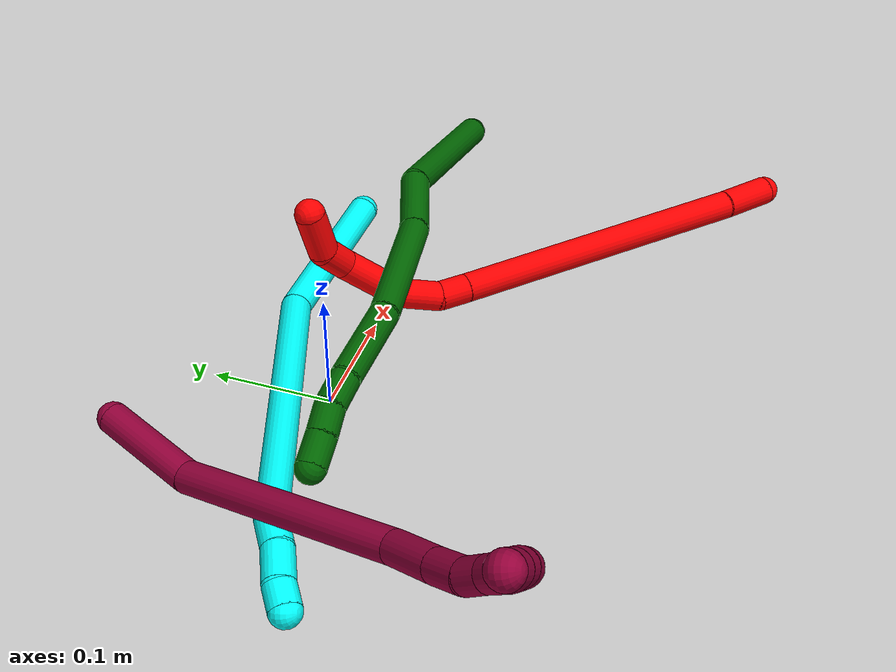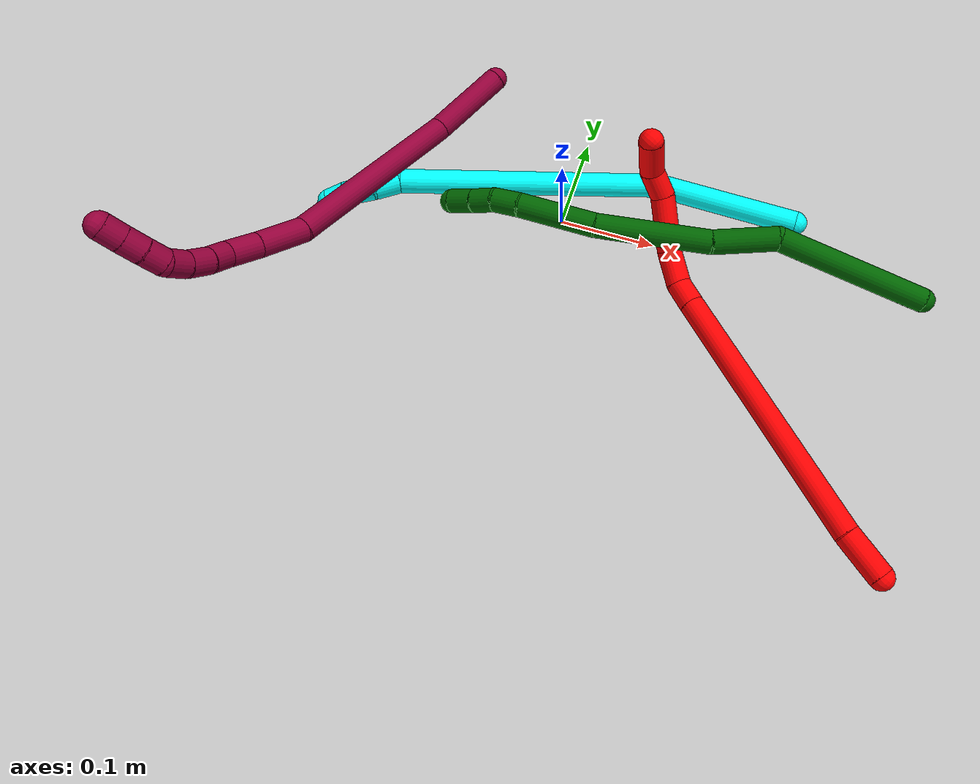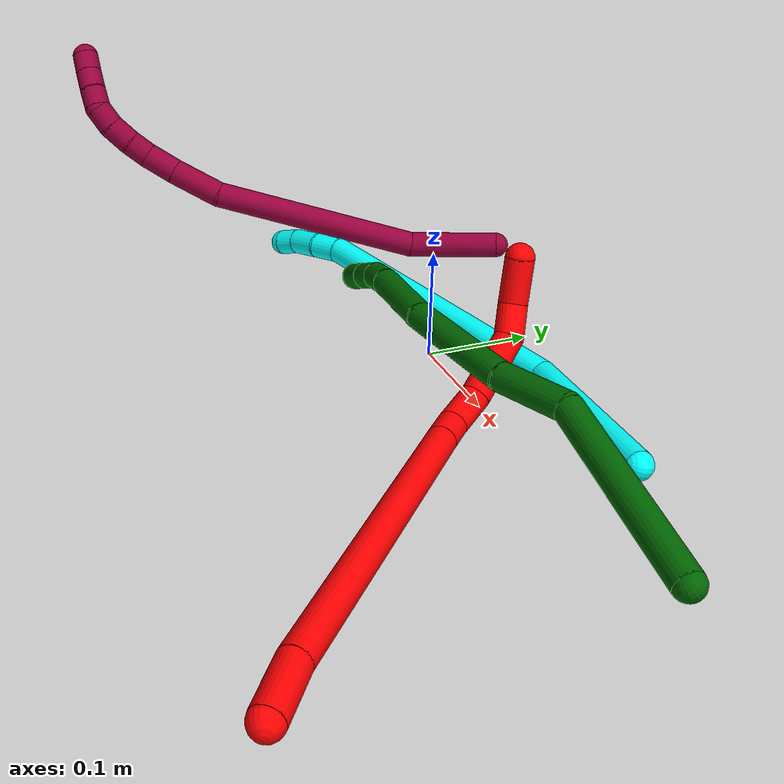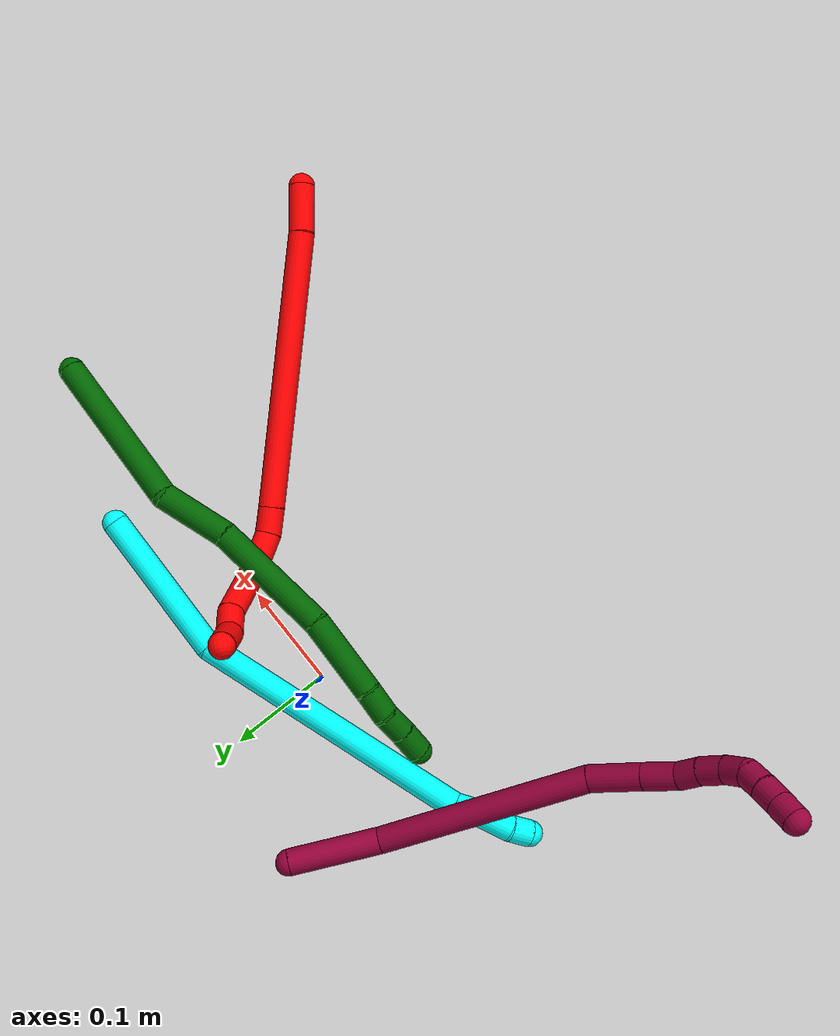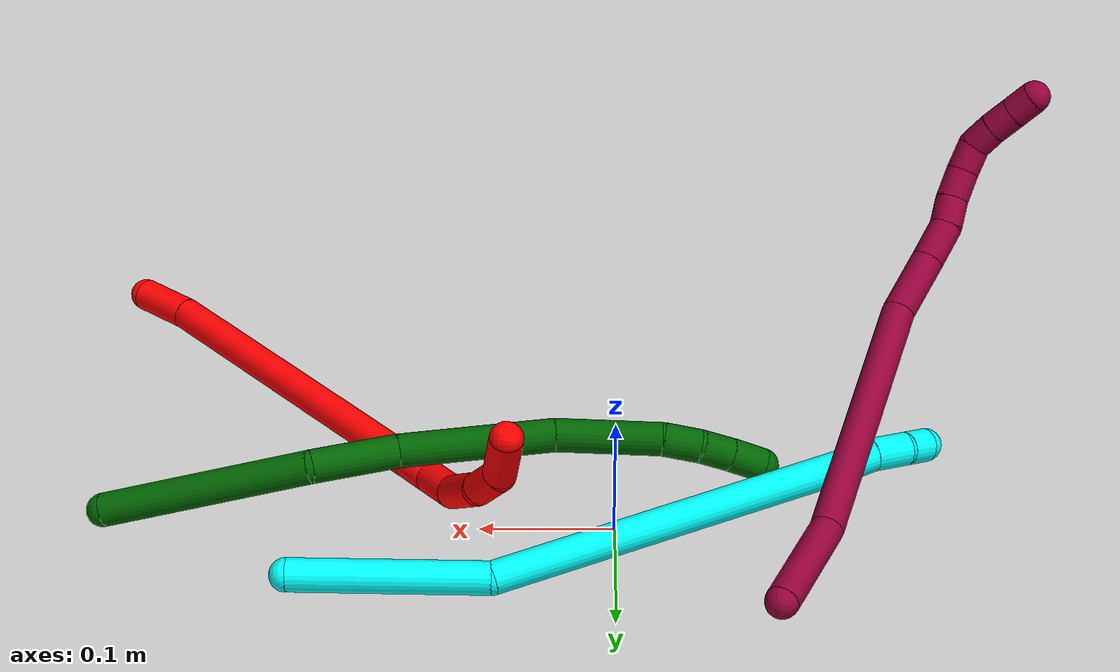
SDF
<sdf version="1.7">
 <world name="default">
  <model name="photoneo_s_sensor">
   <static>1</static>
   <pose>0 0 2 1.57079 1.57079 3.14159</pose>
   <link name="link">
    <inertial><mass>0.1</mass></inertial>
    <sensor name="sensor" type="depth">
     <update_rate>30</update_rate>
     <camera>
      <horizontal_fov>1.22</horizontal_fov>
      <image><width>1920</width><height>1200</height><format>B8G8R8</format></image>
      <clip><near>0.1</near><far>4</far></clip>
      <depth_camera><output>points</output></depth_camera>
     </camera>
     <plugin name="camera_plugin" filename="libgazebo_ros_depth_camera.so">
      <baseline>0.2</baseline>
      <alwaysOn>1</alwaysOn>
      <updateRate>0.0</updateRate>
      <cameraName>camera_ir</cameraName>
      <imageTopicName>/camera/color/image_raw</imageTopicName>
      <cameraInfoTopicName>/camera/color/camera_info</cameraInfoTopicName>
      <depthImageTopicName>/camera/depth/image_raw</depthImageTopicName>
      <depthImageCameraInfoTopicName>/camera/depth/camera_info</depthImageCameraInfoTopicName>
      <pointCloudTopicName>/camera/depth/points</pointCloudTopicName>
      <frameName>fr_optical</frameName>
      <pointCloudCutoff>0.1</pointCloudCutoff>
      <pointCloudCutoffMax>2.0</pointCloudCutoffMax>
      <distortionK1>0</distortionK1>
      <distortionK2>0</distortionK2>
      <distortionK3>0</distortionK3>
      <distortionT1>0</distortionT1>
      <distortionT2>0</distortionT2>
      <CxPrime>0</CxPrime>
      <Cx>0</Cx>
      <Cy>0</Cy>
      <focalLength>0</focalLength>
      <hackBaseline>0</hackBaseline>
     </plugin>
    </sensor>
   </link>
  </model>
  <model name="bin">
   <static>1</static>
   <link name="bottom">
    <collision name="collision-bottom">
     <pose>0 0 -0.01 0 -0 0</pose>
     <geometry><box><size>0.8 0.6 0.02</size></box></geometry>
     <surface>
      <friction><ode><mu>100</mu><mu2>100</mu2></ode></friction>
      <contact><collide_bitmask>65535</collide_bitmask></contact>
     </surface>
    </collision>
   </link>
   <link name="west_wall">
    <collision name="collision-west_wall">
     <pose>-0.41 0 0.1 0 -0 0</pose>
     <geometry><box><size>0.02 0.6 0.2</size></box></geometry>
     <surface>
      <friction><ode><mu>100</mu><mu2>100</mu2></ode></friction>
      <contact><collide_bitmask>65535</collide_bitmask></contact>
     </surface>
    </collision>
   </link>
   <link name="east_wall">
    <collision name="collision-east_wall">
     <pose>0.41 0 0.1 0 -0 0</pose>
     <geometry><box><size>0.02 0.6 0.2</size></box></geometry>
     <surface>
      <friction><ode><mu>100</mu><mu2>100</mu2></ode></friction>
      <contact><collide_bitmask>65535</collide_bitmask></contact>
     </surface>
    </collision>
   </link>
   <link name="south_wall">
    <collision name="collision-south_wall">
     <pose>0 -0.31 0.1 0 -0 0</pose>
     <geometry><box><size>0.8 0.02 0.2</size></box></geometry>
     <surface>
      <friction><ode><mu>100</mu><mu2>100</mu2></ode></friction>
      <contact><collide_bitmask>65535</collide_bitmask></contact>
     </surface>
    </collision>
   </link>
   <link name="north_wall">
    <collision name="collision-north_wall">
     <pose>0 0.31 0.1 0 -0 0</pose>
     <geometry><box><size>0.8 0.02 0.2</size></box></geometry>
     <surface>
      <friction><ode><mu>100</mu><mu2>100</mu2></ode></friction>
      <contact><collide_bitmask>65535</collide_bitmask></contact>
     </surface>
    </collision>
   </link>
  </model>
  <model name="2">
   <static>0</static>
   <link name="2">
    <collision name="collision-cylinder-e_1_1_4">
     <pose>0.000719 0.005995 -0.02243 -2.88041 0.030954 -0.234617</pose>
     <geometry><cylinder><radius>0.0125</radius><length>0.046457</length></cylinder></geometry>
     <surface>
      <friction><ode><mu>1.16</mu><mu2>1.16</mu2><slip1>0</slip1><slip2>0</slip2></ode></friction>
      <contact><ode><kp>1e+06</kp><kd>1</kd><max_vel>0</max_vel><min_depth>0.001</min_depth></ode></contact>
     </surface>
    </collision>
    <visual name="visual-cylinder-e_1_1_4">
     <pose>0.000719 0.005995 -0.02243 -2.88041 0.030954 -0.234617</pose>
     <geometry><cylinder><radius>0.0125</radius><length>0.046457</length></cylinder></geometry>
     <material><ambient>1 0 0 1</ambient></material>
    </visual>
    <collision name="collision-cylinder-e_2_4_5">
     <pose>0.00504 0.060829 -0.16803 -2.7641 0.027179 -0.142051</pose>
     <geometry><cylinder><radius>0.0125</radius><length>0.265097</length></cylinder></geometry>
     <surface>
      <friction><ode><mu>1.16</mu><mu2>1.16</mu2><slip1>0</slip1><slip2>0</slip2></ode></friction>
      <contact><ode><kp>1e+06</kp><kd>1</kd><max_vel>0</max_vel><min_depth>0.001</min_depth></ode></contact>
     </surface>
    </collision>
    <visual name="visual-cylinder-e_2_4_5">
     <pose>0.00504 0.060829 -0.16803 -2.7641 0.027179 -0.142051</pose>
     <geometry><cylinder><radius>0.0125</radius><length>0.265097</length></cylinder></geometry>
     <material><ambient>1 0 0 1</ambient></material>
    </visual>
    <collision name="collision-cylinder-e_3_5_6">
     <pose>0.008784 0.114562 -0.303078 -2.7507 0.011045 -0.055777</pose>
     <geometry><cylinder><radius>0.0125</radius><length>0.025696</length></cylinder></geometry>
     <surface>
      <friction><ode><mu>1.16</mu><mu2>1.16</mu2><slip1>0</slip1><slip2>0</slip2></ode></friction>
      <contact><ode><kp>1e+06</kp><kd>1</kd><max_vel>0</max_vel><min_depth>0.001</min_depth></ode></contact>
     </surface>
    </collision>
    <visual name="visual-cylinder-e_3_5_6">
     <pose>0.008784 0.114562 -0.303078 -2.7507 0.011045 -0.055777</pose>
     <geometry><cylinder><radius>0.0125</radius><length>0.025696</length></cylinder></geometry>
     <material><ambient>1 0 0 1</ambient></material>
    </visual>
    <collision name="collision-cylinder-e_4_6_7">
     <pose>0.003101 0.127004 -0.330065 -2.67837 -0.332118 1.23568</pose>
     <geometry><cylinder><radius>0.0125</radius><length>0.035731</length></cylinder></geometry>
     <surface>
      <friction><ode><mu>1.16</mu><mu2>1.16</mu2><slip1>0</slip1><slip2>0</slip2></ode></friction>
      <contact><ode><kp>1e+06</kp><kd>1</kd><max_vel>0</max_vel><min_depth>0.001</min_depth></ode></contact>
     </surface>
    </collision>
    <visual name="visual-cylinder-e_4_6_7">
     <pose>0.003101 0.127004 -0.330065 -2.67837 -0.332118 1.23568</pose>
     <geometry><cylinder><radius>0.0125</radius><length>0.035731</length></cylinder></geometry>
     <material><ambient>1 0 0 1</ambient></material>
    </visual>
    <collision name="collision-cylinder-e_5_7_8">
     <pose>-0.021669 0.140939 -0.365962 -2.8434 -0.716639 2.37866</pose>
     <geometry><cylinder><radius>0.0125</radius><length>0.057684</length></cylinder></geometry>
     <surface>
      <friction><ode><mu>1.16</mu><mu2>1.16</mu2><slip1>0</slip1><slip2>0</slip2></ode></friction>
      <contact><ode><kp>1e+06</kp><kd>1</kd><max_vel>0</max_vel><min_depth>0.001</min_depth></ode></contact>
     </surface>
    </collision>
    <visual name="visual-cylinder-e_5_7_8">
     <pose>-0.021669 0.140939 -0.365962 -2.8434 -0.716639 2.37866</pose>
     <geometry><cylinder><radius>0.0125</radius><length>0.057684</length></cylinder></geometry>
     <material><ambient>1 0 0 1</ambient></material>
    </visual>
    <collision name="collision-cylinder-e_6_8_9">
     <pose>-0.049547 0.145069 -0.398004 2.94347 -0.661326 -2.57794</pose>
     <geometry><cylinder><radius>0.0125</radius><length>0.029089</length></cylinder></geometry>
     <surface>
      <friction><ode><mu>1.16</mu><mu2>1.16</mu2><slip1>0</slip1><slip2>0</slip2></ode></friction>
      <contact><ode><kp>1e+06</kp><kd>1</kd><max_vel>0</max_vel><min_depth>0.001</min_depth></ode></contact>
     </surface>
    </collision>
    <visual name="visual-cylinder-e_6_8_9">
     <pose>-0.049547 0.145069 -0.398004 2.94347 -0.661326 -2.57794</pose>
     <geometry><cylinder><radius>0.0125</radius><length>0.029089</length></cylinder></geometry>
     <material><ambient>1 0 0 1</ambient></material>
    </visual>
    <collision name="collision-cylinder-e_7_9_2">
     <pose>-0.076272 0.137171 -0.41678 2.49837 -1.08468 -2.13148</pose>
     <geometry><cylinder><radius>0.0125</radius><length>0.040247</length></cylinder></geometry>
     <surface>
      <friction><ode><mu>1.16</mu><mu2>1.16</mu2><slip1>0</slip1><slip2>0</slip2></ode></friction>
      <contact><ode><kp>1e+06</kp><kd>1</kd><max_vel>0</max_vel><min_depth>0.001</min_depth></ode></contact>
     </surface>
    </collision>
    <visual name="visual-cylinder-e_7_9_2">
     <pose>-0.076272 0.137171 -0.41678 2.49837 -1.08468 -2.13148</pose>
     <geometry><cylinder><radius>0.0125</radius><length>0.040247</length></cylinder></geometry>
     <material><ambient>1 0 0 1</ambient></material>
    </visual>
    <collision name="collision-sphere-2">
     <pose>-0.094064 0.131532 -0.424303 0 -0 0</pose>
     <geometry><sphere><radius>0.0125</radius></sphere></geometry>
     <surface>
      <friction><ode><mu>1.16</mu><mu2>1.16</mu2><slip1>0</slip1><slip2>0</slip2></ode></friction>
      <contact><ode><kp>1e+06</kp><kd>1</kd><max_vel>0</max_vel><min_depth>0.001</min_depth></ode></contact>
     </surface>
    </collision>
    <visual name="visual-sphere-2">
     <pose>-0.094064 0.131532 -0.424303 0 -0 0</pose>
     <geometry><sphere><radius>0.0125</radius></sphere></geometry>
     <material><ambient>1 0 0 1</ambient></material>
    </visual>
    <collision name="collision-sphere-9">
     <pose>-0.05848 0.14281 -0.409257 0 -0 0</pose>
     <geometry><sphere><radius>0.0125</radius></sphere></geometry>
     <surface>
      <friction><ode><mu>1.16</mu><mu2>1.16</mu2><slip1>0</slip1><slip2>0</slip2></ode></friction>
      <contact><ode><kp>1e+06</kp><kd>1</kd><max_vel>0</max_vel><min_depth>0.001</min_depth></ode></contact>
     </surface>
    </collision>
    <visual name="visual-sphere-9">
     <pose>-0.05848 0.14281 -0.409257 0 -0 0</pose>
     <geometry><sphere><radius>0.0125</radius></sphere></geometry>
     <material><ambient>1 0 0 1</ambient></material>
    </visual>
    <collision name="collision-sphere-4">
     <pose>0.001438 0.011991 -0.04486 0 -0 0</pose>
     <geometry><sphere><radius>0.0125</radius></sphere></geometry>
     <surface>
      <friction><ode><mu>1.16</mu><mu2>1.16</mu2><slip1>0</slip1><slip2>0</slip2></ode></friction>
      <contact><ode><kp>1e+06</kp><kd>1</kd><max_vel>0</max_vel><min_depth>0.001</min_depth></ode></contact>
     </surface>
    </collision>
    <visual name="visual-sphere-4">
     <pose>0.001438 0.011991 -0.04486 0 -0 0</pose>
     <geometry><sphere><radius>0.0125</radius></sphere></geometry>
     <material><ambient>1 0 0 1</ambient></material>
    </visual>
    <collision name="collision-sphere-1">
     <geometry><sphere><radius>0.0125</radius></sphere></geometry>
     <surface>
      <friction><ode><mu>1.16</mu><mu2>1.16</mu2><slip1>0</slip1><slip2>0</slip2></ode></friction>
      <contact><ode><kp>1e+06</kp><kd>1</kd><max_vel>0</max_vel><min_depth>0.001</min_depth></ode></contact>
     </surface>
    </collision>
    <visual name="visual-sphere-1">
     <geometry><sphere><radius>0.0125</radius></sphere></geometry>
     <material><ambient>1 0 0 1</ambient></material>
    </visual>
    <collision name="collision-sphere-8">
     <pose>-0.040614 0.147329 -0.38675 0 -0 0</pose>
     <geometry><sphere><radius>0.0125</radius></sphere></geometry>
     <surface>
      <friction><ode><mu>1.16</mu><mu2>1.16</mu2><slip1>0</slip1><slip2>0</slip2></ode></friction>
      <contact><ode><kp>1e+06</kp><kd>1</kd><max_vel>0</max_vel><min_depth>0.001</min_depth></ode></contact>
     </surface>
    </collision>
    <visual name="visual-sphere-8">
     <pose>-0.040614 0.147329 -0.38675 0 -0 0</pose>
     <geometry><sphere><radius>0.0125</radius></sphere></geometry>
     <material><ambient>1 0 0 1</ambient></material>
    </visual>
    <collision name="collision-sphere-5">
     <pose>0.008642 0.109667 -0.2912 0 -0 0</pose>
     <geometry><sphere><radius>0.0125</radius></sphere></geometry>
     <surface>
      <friction><ode><mu>1.16</mu><mu2>1.16</mu2><slip1>0</slip1><slip2>0</slip2></ode></friction>
      <contact><ode><kp>1e+06</kp><kd>1</kd><max_vel>0</max_vel><min_depth>0.001</min_depth></ode></contact>
     </surface>
    </collision>
    <visual name="visual-sphere-5">
     <pose>0.008642 0.109667 -0.2912 0 -0 0</pose>
     <geometry><sphere><radius>0.0125</radius></sphere></geometry>
     <material><ambient>1 0 0 1</ambient></material>
    </visual>
    <collision name="collision-sphere-6">
     <pose>0.008926 0.119457 -0.314956 0 -0 0</pose>
     <geometry><sphere><radius>0.0125</radius></sphere></geometry>
     <surface>
      <friction><ode><mu>1.16</mu><mu2>1.16</mu2><slip1>0</slip1><slip2>0</slip2></ode></friction>
      <contact><ode><kp>1e+06</kp><kd>1</kd><max_vel>0</max_vel><min_depth>0.001</min_depth></ode></contact>
     </surface>
    </collision>
    <visual name="visual-sphere-6">
     <pose>0.008926 0.119457 -0.314956 0 -0 0</pose>
     <geometry><sphere><radius>0.0125</radius></sphere></geometry>
     <material><ambient>1 0 0 1</ambient></material>
    </visual>
    <collision name="collision-sphere-7">
     <pose>-0.002724 0.13455 -0.345175 0 -0 0</pose>
     <geometry><sphere><radius>0.0125</radius></sphere></geometry>
     <surface>
      <friction><ode><mu>1.16</mu><mu2>1.16</mu2><slip1>0</slip1><slip2>0</slip2></ode></friction>
      <contact><ode><kp>1e+06</kp><kd>1</kd><max_vel>0</max_vel><min_depth>0.001</min_depth></ode></contact>
     </surface>
    </collision>
    <visual name="visual-sphere-7">
     <pose>-0.002724 0.13455 -0.345175 0 -0 0</pose>
     <geometry><sphere><radius>0.0125</radius></sphere></geometry>
     <material><ambient>1 0 0 1</ambient></material>
    </visual>
    <inertial>
     <pose>-0.00811 0.083513 -0.229259 0 -0 0</pose>
     <mass>0.5</mass>
     <inertia>
      <ixx>0.001326</ixx>
      <ixy>0</ixy>
      <ixz>0</ixz>
      <iyy>-0.001628</iyy>
      <iyz>0</iyz>
      <izz>-0.000637</izz>
     </inertia>
    </inertial>
   </link>
   <pose>0.382518 -0.275626 0.012317 -1.99977 1.12971 -2.40173</pose>
  </model>
  <model name="3">
   <static>0</static>
   <link name="3">
    <collision name="collision-cylinder-e_1_1_4">
     <pose>-0.069904 0.02469 -0.003287 -1.70315 -1.22851 1.35604</pose>
     <geometry><cylinder><radius>0.0125</radius><length>0.148418</length></cylinder></geometry>
     <surface>
      <friction><ode><mu>1.16</mu><mu2>1.16</mu2><slip1>0</slip1><slip2>0</slip2></ode></friction>
      <contact><ode><kp>1e+06</kp><kd>1</kd><max_vel>0</max_vel><min_depth>0.001</min_depth></ode></contact>
     </surface>
    </collision>
    <visual name="visual-cylinder-e_1_1_4">
     <pose>-0.069904 0.02469 -0.003287 -1.70315 -1.22851 1.35604</pose>
     <geometry><cylinder><radius>0.0125</radius><length>0.148418</length></cylinder></geometry>
     <material><ambient>0.003922 1 0.996078 1</ambient></material>
    </visual>
    <collision name="collision-cylinder-e_2_4_5">
     <pose>-0.257574 0.091705 -0.062852 -2.49677 -1.03188 2.07702</pose>
     <geometry><cylinder><radius>0.0125</radius><length>0.274426</length></cylinder></geometry>
     <surface>
      <friction><ode><mu>1.16</mu><mu2>1.16</mu2><slip1>0</slip1><slip2>0</slip2></ode></friction>
      <contact><ode><kp>1e+06</kp><kd>1</kd><max_vel>0</max_vel><min_depth>0.001</min_depth></ode></contact>
     </surface>
    </collision>
    <visual name="visual-cylinder-e_2_4_5">
     <pose>-0.257574 0.091705 -0.062852 -2.49677 -1.03188 2.07702</pose>
     <geometry><cylinder><radius>0.0125</radius><length>0.274426</length></cylinder></geometry>
     <material><ambient>0.003922 1 0.996078 1</ambient></material>
    </visual>
    <collision name="collision-cylinder-e_3_5_6">
     <pose>-0.384467 0.140398 -0.12665 -2.43889 -0.747206 1.63787</pose>
     <geometry><cylinder><radius>0.0125</radius><length>0.026863</length></cylinder></geometry>
     <surface>
      <friction><ode><mu>1.16</mu><mu2>1.16</mu2><slip1>0</slip1><slip2>0</slip2></ode></friction>
      <contact><ode><kp>1e+06</kp><kd>1</kd><max_vel>0</max_vel><min_depth>0.001</min_depth></ode></contact>
     </surface>
    </collision>
    <visual name="visual-cylinder-e_3_5_6">
     <pose>-0.384467 0.140398 -0.12665 -2.43889 -0.747206 1.63787</pose>
     <geometry><cylinder><radius>0.0125</radius><length>0.026863</length></cylinder></geometry>
     <material><ambient>0.003922 1 0.996078 1</ambient></material>
    </visual>
    <collision name="collision-cylinder-e_4_6_7">
     <pose>-0.404713 0.154791 -0.140382 -2.22959 -0.830937 1.46499</pose>
     <geometry><cylinder><radius>0.0125</radius><length>0.030108</length></cylinder></geometry>
     <surface>
      <friction><ode><mu>1.16</mu><mu2>1.16</mu2><slip1>0</slip1><slip2>0</slip2></ode></friction>
      <contact><ode><kp>1e+06</kp><kd>1</kd><max_vel>0</max_vel><min_depth>0.001</min_depth></ode></contact>
     </surface>
    </collision>
    <visual name="visual-cylinder-e_4_6_7">
     <pose>-0.404713 0.154791 -0.140382 -2.22959 -0.830937 1.46499</pose>
     <geometry><cylinder><radius>0.0125</radius><length>0.030108</length></cylinder></geometry>
     <material><ambient>0.003922 1 0.996078 1</ambient></material>
    </visual>
    <collision name="collision-cylinder-e_5_7_2">
     <pose>-0.421576 0.169456 -0.151571 -2.21401 -0.605561 1.11655</pose>
     <geometry><cylinder><radius>0.0125</radius><length>0.020186</length></cylinder></geometry>
     <surface>
      <friction><ode><mu>1.16</mu><mu2>1.16</mu2><slip1>0</slip1><slip2>0</slip2></ode></friction>
      <contact><ode><kp>1e+06</kp><kd>1</kd><max_vel>0</max_vel><min_depth>0.001</min_depth></ode></contact>
     </surface>
    </collision>
    <visual name="visual-cylinder-e_5_7_2">
     <pose>-0.421576 0.169456 -0.151571 -2.21401 -0.605561 1.11655</pose>
     <geometry><cylinder><radius>0.0125</radius><length>0.020186</length></cylinder></geometry>
     <material><ambient>0.003922 1 0.996078 1</ambient></material>
    </visual>
    <collision name="collision-sphere-2">
     <pose>-0.427321 0.176096 -0.156548 0 -0 0</pose>
     <geometry><sphere><radius>0.0125</radius></sphere></geometry>
     <surface>
      <friction><ode><mu>1.16</mu><mu2>1.16</mu2><slip1>0</slip1><slip2>0</slip2></ode></friction>
      <contact><ode><kp>1e+06</kp><kd>1</kd><max_vel>0</max_vel><min_depth>0.001</min_depth></ode></contact>
     </surface>
    </collision>
    <visual name="visual-sphere-2">
     <pose>-0.427321 0.176096 -0.156548 0 -0 0</pose>
     <geometry><sphere><radius>0.0125</radius></sphere></geometry>
     <material><ambient>0.003922 1 0.996078 1</ambient></material>
    </visual>
    <collision name="collision-sphere-7">
     <pose>-0.415831 0.162816 -0.146594 0 -0 0</pose>
     <geometry><sphere><radius>0.0125</radius></sphere></geometry>
     <surface>
      <friction><ode><mu>1.16</mu><mu2>1.16</mu2><slip1>0</slip1><slip2>0</slip2></ode></friction>
      <contact><ode><kp>1e+06</kp><kd>1</kd><max_vel>0</max_vel><min_depth>0.001</min_depth></ode></contact>
     </surface>
    </collision>
    <visual name="visual-sphere-7">
     <pose>-0.415831 0.162816 -0.146594 0 -0 0</pose>
     <geometry><sphere><radius>0.0125</radius></sphere></geometry>
     <material><ambient>0.003922 1 0.996078 1</ambient></material>
    </visual>
    <collision name="collision-sphere-6">
     <pose>-0.393595 0.146766 -0.134169 0 -0 0</pose>
     <geometry><sphere><radius>0.0125</radius></sphere></geometry>
     <surface>
      <friction><ode><mu>1.16</mu><mu2>1.16</mu2><slip1>0</slip1><slip2>0</slip2></ode></friction>
      <contact><ode><kp>1e+06</kp><kd>1</kd><max_vel>0</max_vel><min_depth>0.001</min_depth></ode></contact>
     </surface>
    </collision>
    <visual name="visual-sphere-6">
     <pose>-0.393595 0.146766 -0.134169 0 -0 0</pose>
     <geometry><sphere><radius>0.0125</radius></sphere></geometry>
     <material><ambient>0.003922 1 0.996078 1</ambient></material>
    </visual>
    <collision name="collision-sphere-5">
     <pose>-0.375339 0.13403 -0.119131 0 -0 0</pose>
     <geometry><sphere><radius>0.0125</radius></sphere></geometry>
     <surface>
      <friction><ode><mu>1.16</mu><mu2>1.16</mu2><slip1>0</slip1><slip2>0</slip2></ode></friction>
      <contact><ode><kp>1e+06</kp><kd>1</kd><max_vel>0</max_vel><min_depth>0.001</min_depth></ode></contact>
     </surface>
    </collision>
    <visual name="visual-sphere-5">
     <pose>-0.375339 0.13403 -0.119131 0 -0 0</pose>
     <geometry><sphere><radius>0.0125</radius></sphere></geometry>
     <material><ambient>0.003922 1 0.996078 1</ambient></material>
    </visual>
    <collision name="collision-sphere-1">
     <geometry><sphere><radius>0.0125</radius></sphere></geometry>
     <surface>
      <friction><ode><mu>1.16</mu><mu2>1.16</mu2><slip1>0</slip1><slip2>0</slip2></ode></friction>
      <contact><ode><kp>1e+06</kp><kd>1</kd><max_vel>0</max_vel><min_depth>0.001</min_depth></ode></contact>
     </surface>
    </collision>
    <visual name="visual-sphere-1">
     <geometry><sphere><radius>0.0125</radius></sphere></geometry>
     <material><ambient>0.003922 1 0.996078 1</ambient></material>
    </visual>
    <collision name="collision-sphere-4">
     <pose>-0.139809 0.049379 -0.006574 0 -0 0</pose>
     <geometry><sphere><radius>0.0125</radius></sphere></geometry>
     <surface>
      <friction><ode><mu>1.16</mu><mu2>1.16</mu2><slip1>0</slip1><slip2>0</slip2></ode></friction>
      <contact><ode><kp>1e+06</kp><kd>1</kd><max_vel>0</max_vel><min_depth>0.001</min_depth></ode></contact>
     </surface>
    </collision>
    <visual name="visual-sphere-4">
     <pose>-0.139809 0.049379 -0.006574 0 -0 0</pose>
     <geometry><sphere><radius>0.0125</radius></sphere></geometry>
     <material><ambient>0.003922 1 0.996078 1</ambient></material>
    </visual>
    <inertial>
     <pose>-0.224165 0.081366 -0.056849 0 -0 0</pose>
     <mass>0.5</mass>
     <inertia>
      <ixx>0.00043</ixx>
      <ixy>0</ixy>
      <ixz>0</ixz>
      <iyy>0.002591</iyy>
      <iyz>0</iyz>
      <izz>0.001111</izz>
     </inertia>
    </inertial>
   </link>
   <pose>0.23691 0.063755 0.012567 -1.88089 0.310972 -0.163628</pose>
  </model>
  <model name="6">
   <static>0</static>
   <link name="6">
    <collision name="collision-cylinder-e_1_1_4">
     <pose>-0.062626 -0.044173 -0.023289 2.05598 -0.897654 -1.34747</pose>
     <geometry><cylinder><radius>0.0125</radius><length>0.160195</length></cylinder></geometry>
     <surface>
      <friction><ode><mu>1.16</mu><mu2>1.16</mu2><slip1>0</slip1><slip2>0</slip2></ode></friction>
      <contact><ode><kp>1e+06</kp><kd>1</kd><max_vel>0</max_vel><min_depth>0.001</min_depth></ode></contact>
     </surface>
    </collision>
    <visual name="visual-cylinder-e_1_1_4">
     <pose>-0.062626 -0.044173 -0.023289 2.05598 -0.897654 -1.34747</pose>
     <geometry><cylinder><radius>0.0125</radius><length>0.160195</length></cylinder></geometry>
     <material><ambient>0 0.392157 0.003922 1</ambient></material>
    </visual>
    <collision name="collision-cylinder-e_2_4_5">
     <pose>-0.157078 -0.092969 -0.053674 2.56431 -1.31072 -2.40433</pose>
     <geometry><cylinder><radius>0.0125</radius><length>0.065868</length></cylinder></geometry>
     <surface>
      <friction><ode><mu>1.16</mu><mu2>1.16</mu2><slip1>0</slip1><slip2>0</slip2></ode></friction>
      <contact><ode><kp>1e+06</kp><kd>1</kd><max_vel>0</max_vel><min_depth>0.001</min_depth></ode></contact>
     </surface>
    </collision>
    <visual name="visual-cylinder-e_2_4_5">
     <pose>-0.157078 -0.092969 -0.053674 2.56431 -1.31072 -2.40433</pose>
     <geometry><cylinder><radius>0.0125</radius><length>0.065868</length></cylinder></geometry>
     <material><ambient>0 0.392157 0.003922 1</ambient></material>
    </visual>
    <collision name="collision-cylinder-e_3_5_6">
     <pose>-0.242818 -0.116933 -0.070468 2.03551 -1.18916 -1.66182</pose>
     <geometry><cylinder><radius>0.0125</radius><length>0.116186</length></cylinder></geometry>
     <surface>
      <friction><ode><mu>1.16</mu><mu2>1.16</mu2><slip1>0</slip1><slip2>0</slip2></ode></friction>
      <contact><ode><kp>1e+06</kp><kd>1</kd><max_vel>0</max_vel><min_depth>0.001</min_depth></ode></contact>
     </surface>
    </collision>
    <visual name="visual-cylinder-e_3_5_6">
     <pose>-0.242818 -0.116933 -0.070468 2.03551 -1.18916 -1.66182</pose>
     <geometry><cylinder><radius>0.0125</radius><length>0.116186</length></cylinder></geometry>
     <material><ambient>0 0.392157 0.003922 1</ambient></material>
    </visual>
    <collision name="collision-cylinder-e_4_6_7">
     <pose>-0.332033 -0.153785 -0.081745 1.66084 -1.10872 -1.19098</pose>
     <geometry><cylinder><radius>0.0125</radius><length>0.078876</length></cylinder></geometry>
     <surface>
      <friction><ode><mu>1.16</mu><mu2>1.16</mu2><slip1>0</slip1><slip2>0</slip2></ode></friction>
      <contact><ode><kp>1e+06</kp><kd>1</kd><max_vel>0</max_vel><min_depth>0.001</min_depth></ode></contact>
     </surface>
    </collision>
    <visual name="visual-cylinder-e_4_6_7">
     <pose>-0.332033 -0.153785 -0.081745 1.66084 -1.10872 -1.19098</pose>
     <geometry><cylinder><radius>0.0125</radius><length>0.078876</length></cylinder></geometry>
     <material><ambient>0 0.392157 0.003922 1</ambient></material>
    </visual>
    <collision name="collision-cylinder-e_5_7_8">
     <pose>-0.380257 -0.176697 -0.08172 1.28169 -1.15954 -0.908678</pose>
     <geometry><cylinder><radius>0.0125</radius><length>0.028195</length></cylinder></geometry>
     <surface>
      <friction><ode><mu>1.16</mu><mu2>1.16</mu2><slip1>0</slip1><slip2>0</slip2></ode></friction>
      <contact><ode><kp>1e+06</kp><kd>1</kd><max_vel>0</max_vel><min_depth>0.001</min_depth></ode></contact>
     </surface>
    </collision>
    <visual name="visual-cylinder-e_5_7_8">
     <pose>-0.380257 -0.176697 -0.08172 1.28169 -1.15954 -0.908678</pose>
     <geometry><cylinder><radius>0.0125</radius><length>0.028195</length></cylinder></geometry>
     <material><ambient>0 0.392157 0.003922 1</ambient></material>
    </visual>
    <collision name="collision-cylinder-e_6_8_9">
     <pose>-0.404757 -0.184028 -0.077594 0.653519 -1.30336 -0.506</pose>
     <geometry><cylinder><radius>0.0125</radius><length>0.02401</length></cylinder></geometry>
     <surface>
      <friction><ode><mu>1.16</mu><mu2>1.16</mu2><slip1>0</slip1><slip2>0</slip2></ode></friction>
      <contact><ode><kp>1e+06</kp><kd>1</kd><max_vel>0</max_vel><min_depth>0.001</min_depth></ode></contact>
     </surface>
    </collision>
    <visual name="visual-cylinder-e_6_8_9">
     <pose>-0.404757 -0.184028 -0.077594 0.653519 -1.30336 -0.506</pose>
     <geometry><cylinder><radius>0.0125</radius><length>0.02401</length></cylinder></geometry>
     <material><ambient>0 0.392157 0.003922 1</ambient></material>
    </visual>
    <collision name="collision-cylinder-e_7_9_2">
     <pose>-0.428982 -0.188549 -0.071736 0.660053 -1.24816 -0.483684</pose>
     <geometry><cylinder><radius>0.0125</radius><length>0.026671</length></cylinder></geometry>
     <surface>
      <friction><ode><mu>1.16</mu><mu2>1.16</mu2><slip1>0</slip1><slip2>0</slip2></ode></friction>
      <contact><ode><kp>1e+06</kp><kd>1</kd><max_vel>0</max_vel><min_depth>0.001</min_depth></ode></contact>
     </surface>
    </collision>
    <visual name="visual-cylinder-e_7_9_2">
     <pose>-0.428982 -0.188549 -0.071736 0.660053 -1.24816 -0.483684</pose>
     <geometry><cylinder><radius>0.0125</radius><length>0.026671</length></cylinder></geometry>
     <material><ambient>0 0.392157 0.003922 1</ambient></material>
    </visual>
    <collision name="collision-sphere-2">
     <pose>-0.44163 -0.191141 -0.068395 0 -0 0</pose>
     <geometry><sphere><radius>0.0125</radius></sphere></geometry>
     <surface>
      <friction><ode><mu>1.16</mu><mu2>1.16</mu2><slip1>0</slip1><slip2>0</slip2></ode></friction>
      <contact><ode><kp>1e+06</kp><kd>1</kd><max_vel>0</max_vel><min_depth>0.001</min_depth></ode></contact>
     </surface>
    </collision>
    <visual name="visual-sphere-2">
     <pose>-0.44163 -0.191141 -0.068395 0 -0 0</pose>
     <geometry><sphere><radius>0.0125</radius></sphere></geometry>
     <material><ambient>0 0.392157 0.003922 1</ambient></material>
    </visual>
    <collision name="collision-sphere-9">
     <pose>-0.416335 -0.185956 -0.075076 0 -0 0</pose>
     <geometry><sphere><radius>0.0125</radius></sphere></geometry>
     <surface>
      <friction><ode><mu>1.16</mu><mu2>1.16</mu2><slip1>0</slip1><slip2>0</slip2></ode></friction>
      <contact><ode><kp>1e+06</kp><kd>1</kd><max_vel>0</max_vel><min_depth>0.001</min_depth></ode></contact>
     </surface>
    </collision>
    <visual name="visual-sphere-9">
     <pose>-0.416335 -0.185956 -0.075076 0 -0 0</pose>
     <geometry><sphere><radius>0.0125</radius></sphere></geometry>
     <material><ambient>0 0.392157 0.003922 1</ambient></material>
    </visual>
    <collision name="collision-sphere-4">
     <pose>-0.125251 -0.088347 -0.046578 0 -0 0</pose>
     <geometry><sphere><radius>0.0125</radius></sphere></geometry>
     <surface>
      <friction><ode><mu>1.16</mu><mu2>1.16</mu2><slip1>0</slip1><slip2>0</slip2></ode></friction>
      <contact><ode><kp>1e+06</kp><kd>1</kd><max_vel>0</max_vel><min_depth>0.001</min_depth></ode></contact>
     </surface>
    </collision>
    <visual name="visual-sphere-4">
     <pose>-0.125251 -0.088347 -0.046578 0 -0 0</pose>
     <geometry><sphere><radius>0.0125</radius></sphere></geometry>
     <material><ambient>0 0.392157 0.003922 1</ambient></material>
    </visual>
    <collision name="collision-sphere-1">
     <geometry><sphere><radius>0.0125</radius></sphere></geometry>
     <surface>
      <friction><ode><mu>1.16</mu><mu2>1.16</mu2><slip1>0</slip1><slip2>0</slip2></ode></friction>
      <contact><ode><kp>1e+06</kp><kd>1</kd><max_vel>0</max_vel><min_depth>0.001</min_depth></ode></contact>
     </surface>
    </collision>
    <visual name="visual-sphere-1">
     <geometry><sphere><radius>0.0125</radius></sphere></geometry>
     <material><ambient>0 0.392157 0.003922 1</ambient></material>
    </visual>
    <collision name="collision-sphere-8">
     <pose>-0.393179 -0.182099 -0.080113 0 -0 0</pose>
     <geometry><sphere><radius>0.0125</radius></sphere></geometry>
     <surface>
      <friction><ode><mu>1.16</mu><mu2>1.16</mu2><slip1>0</slip1><slip2>0</slip2></ode></friction>
      <contact><ode><kp>1e+06</kp><kd>1</kd><max_vel>0</max_vel><min_depth>0.001</min_depth></ode></contact>
     </surface>
    </collision>
    <visual name="visual-sphere-8">
     <pose>-0.393179 -0.182099 -0.080113 0 -0 0</pose>
     <geometry><sphere><radius>0.0125</radius></sphere></geometry>
     <material><ambient>0 0.392157 0.003922 1</ambient></material>
    </visual>
    <collision name="collision-sphere-5">
     <pose>-0.188904 -0.097591 -0.060771 0 -0 0</pose>
     <geometry><sphere><radius>0.0125</radius></sphere></geometry>
     <surface>
      <friction><ode><mu>1.16</mu><mu2>1.16</mu2><slip1>0</slip1><slip2>0</slip2></ode></friction>
      <contact><ode><kp>1e+06</kp><kd>1</kd><max_vel>0</max_vel><min_depth>0.001</min_depth></ode></contact>
     </surface>
    </collision>
    <visual name="visual-sphere-5">
     <pose>-0.188904 -0.097591 -0.060771 0 -0 0</pose>
     <geometry><sphere><radius>0.0125</radius></sphere></geometry>
     <material><ambient>0 0.392157 0.003922 1</ambient></material>
    </visual>
    <collision name="collision-sphere-6">
     <pose>-0.296731 -0.136275 -0.080164 0 -0 0</pose>
     <geometry><sphere><radius>0.0125</radius></sphere></geometry>
     <surface>
      <friction><ode><mu>1.16</mu><mu2>1.16</mu2><slip1>0</slip1><slip2>0</slip2></ode></friction>
      <contact><ode><kp>1e+06</kp><kd>1</kd><max_vel>0</max_vel><min_depth>0.001</min_depth></ode></contact>
     </surface>
    </collision>
    <visual name="visual-sphere-6">
     <pose>-0.296731 -0.136275 -0.080164 0 -0 0</pose>
     <geometry><sphere><radius>0.0125</radius></sphere></geometry>
     <material><ambient>0 0.392157 0.003922 1</ambient></material>
    </visual>
    <collision name="collision-sphere-7">
     <pose>-0.367335 -0.171296 -0.083326 0 -0 0</pose>
     <geometry><sphere><radius>0.0125</radius></sphere></geometry>
     <surface>
      <friction><ode><mu>1.16</mu><mu2>1.16</mu2><slip1>0</slip1><slip2>0</slip2></ode></friction>
      <contact><ode><kp>1e+06</kp><kd>1</kd><max_vel>0</max_vel><min_depth>0.001</min_depth></ode></contact>
     </surface>
    </collision>
    <visual name="visual-sphere-7">
     <pose>-0.367335 -0.171296 -0.083326 0 -0 0</pose>
     <geometry><sphere><radius>0.0125</radius></sphere></geometry>
     <material><ambient>0 0.392157 0.003922 1</ambient></material>
    </visual>
    <inertial>
     <pose>-0.213321 -0.10669 -0.055963 0 -0 0</pose>
     <mass>0.5</mass>
     <inertia>
      <ixx>-0.000273</ixx>
      <ixy>0</ixy>
      <ixz>0</ixz>
      <iyy>8.3e-05</iyy>
      <iyz>0</iyz>
      <izz>0.000728</izz>
     </inertia>
    </inertial>
   </link>
   <pose>0.375396 0.005945 0.02338 -2.63245 -0.304103 0.354449</pose>
  </model>
  <model name="8">
   <static>0</static>
   <link name="8">
    <collision name="collision-cylinder-e_1_1_4">
     <pose>0.020772 0.010725 0.036416 -0.286424 0.500675 -0.073711</pose>
     <geometry><cylinder><radius>0.0125</radius><length>0.086548</length></cylinder></geometry>
     <surface>
      <friction><ode><mu>1.16</mu><mu2>1.16</mu2><slip1>0</slip1><slip2>0</slip2></ode></friction>
      <contact><ode><kp>1e+06</kp><kd>1</kd><max_vel>0</max_vel><min_depth>0.001</min_depth></ode></contact>
     </surface>
    </collision>
    <visual name="visual-cylinder-e_1_1_4">
     <pose>0.020772 0.010725 0.036416 -0.286424 0.500675 -0.073711</pose>
     <geometry><cylinder><radius>0.0125</radius><length>0.086548</length></cylinder></geometry>
     <material><ambient>0.584314 0 0.227451 1</ambient></material>
    </visual>
    <collision name="collision-cylinder-e_2_4_5">
     <pose>0.071522 0.02279 0.170336 -0.013736 0.298249 -0.002064</pose>
     <geometry><cylinder><radius>0.0125</radius><length>0.204034</length></cylinder></geometry>
     <surface>
      <friction><ode><mu>1.16</mu><mu2>1.16</mu2><slip1>0</slip1><slip2>0</slip2></ode></friction>
      <contact><ode><kp>1e+06</kp><kd>1</kd><max_vel>0</max_vel><min_depth>0.001</min_depth></ode></contact>
     </surface>
    </collision>
    <visual name="visual-cylinder-e_2_4_5">
     <pose>0.071522 0.02279 0.170336 -0.013736 0.298249 -0.002064</pose>
     <geometry><cylinder><radius>0.0125</radius><length>0.204034</length></cylinder></geometry>
     <material><ambient>0.584314 0 0.227451 1</ambient></material>
    </visual>
    <collision name="collision-cylinder-e_3_5_6">
     <pose>0.111567 0.018672 0.2898 0.243598 0.418604 0.051989</pose>
     <geometry><cylinder><radius>0.0125</radius><length>0.049533</length></cylinder></geometry>
     <surface>
      <friction><ode><mu>1.16</mu><mu2>1.16</mu2><slip1>0</slip1><slip2>0</slip2></ode></friction>
      <contact><ode><kp>1e+06</kp><kd>1</kd><max_vel>0</max_vel><min_depth>0.001</min_depth></ode></contact>
     </surface>
    </collision>
    <visual name="visual-cylinder-e_3_5_6">
     <pose>0.111567 0.018672 0.2898 0.243598 0.418604 0.051989</pose>
     <geometry><cylinder><radius>0.0125</radius><length>0.049533</length></cylinder></geometry>
     <material><ambient>0.584314 0 0.227451 1</ambient></material>
    </visual>
    <collision name="collision-cylinder-e_4_6_7">
     <pose>0.127807 0.008816 0.325977 0.300028 0.393183 0.060189</pose>
     <geometry><cylinder><radius>0.0125</radius><length>0.032222</length></cylinder></geometry>
     <surface>
      <friction><ode><mu>1.16</mu><mu2>1.16</mu2><slip1>0</slip1><slip2>0</slip2></ode></friction>
      <contact><ode><kp>1e+06</kp><kd>1</kd><max_vel>0</max_vel><min_depth>0.001</min_depth></ode></contact>
     </surface>
    </collision>
    <visual name="visual-cylinder-e_4_6_7">
     <pose>0.127807 0.008816 0.325977 0.300028 0.393183 0.060189</pose>
     <geometry><cylinder><radius>0.0125</radius><length>0.032222</length></cylinder></geometry>
     <material><ambient>0.584314 0 0.227451 1</ambient></material>
    </visual>
    <collision name="collision-cylinder-e_5_7_8">
     <pose>0.135187 0.000618 0.350526 0.352358 0.109284 0.019474</pose>
     <geometry><cylinder><radius>0.0125</radius><length>0.022149</length></cylinder></geometry>
     <surface>
      <friction><ode><mu>1.16</mu><mu2>1.16</mu2><slip1>0</slip1><slip2>0</slip2></ode></friction>
      <contact><ode><kp>1e+06</kp><kd>1</kd><max_vel>0</max_vel><min_depth>0.001</min_depth></ode></contact>
     </surface>
    </collision>
    <visual name="visual-cylinder-e_5_7_8">
     <pose>0.135187 0.000618 0.350526 0.352358 0.109284 0.019474</pose>
     <geometry><cylinder><radius>0.0125</radius><length>0.022149</length></cylinder></geometry>
     <material><ambient>0.584314 0 0.227451 1</ambient></material>
    </visual>
    <collision name="collision-cylinder-e_6_8_9">
     <pose>0.138863 -0.00838 0.371267 0.463212 0.209034 0.049468</pose>
     <geometry><cylinder><radius>0.0125</radius><length>0.023787</length></cylinder></geometry>
     <surface>
      <friction><ode><mu>1.16</mu><mu2>1.16</mu2><slip1>0</slip1><slip2>0</slip2></ode></friction>
      <contact><ode><kp>1e+06</kp><kd>1</kd><max_vel>0</max_vel><min_depth>0.001</min_depth></ode></contact>
     </surface>
    </collision>
    <visual name="visual-cylinder-e_6_8_9">
     <pose>0.138863 -0.00838 0.371267 0.463212 0.209034 0.049468</pose>
     <geometry><cylinder><radius>0.0125</radius><length>0.023787</length></cylinder></geometry>
     <material><ambient>0.584314 0 0.227451 1</ambient></material>
    </visual>
    <collision name="collision-cylinder-e_7_9_10">
     <pose>0.143419 -0.020312 0.389885 0.68696 0.194196 0.069646</pose>
     <geometry><cylinder><radius>0.0125</radius><length>0.021643</length></cylinder></geometry>
     <surface>
      <friction><ode><mu>1.16</mu><mu2>1.16</mu2><slip1>0</slip1><slip2>0</slip2></ode></friction>
      <contact><ode><kp>1e+06</kp><kd>1</kd><max_vel>0</max_vel><min_depth>0.001</min_depth></ode></contact>
     </surface>
    </collision>
    <visual name="visual-cylinder-e_7_9_10">
     <pose>0.143419 -0.020312 0.389885 0.68696 0.194196 0.069646</pose>
     <geometry><cylinder><radius>0.0125</radius><length>0.021643</length></cylinder></geometry>
     <material><ambient>0.584314 0 0.227451 1</ambient></material>
    </visual>
    <collision name="collision-cylinder-e_8_10_11">
     <pose>0.149916 -0.035247 0.401817 1.14472 0.455182 0.29626</pose>
     <geometry><cylinder><radius>0.0125</radius><length>0.020055</length></cylinder></geometry>
     <surface>
      <friction><ode><mu>1.16</mu><mu2>1.16</mu2><slip1>0</slip1><slip2>0</slip2></ode></friction>
      <contact><ode><kp>1e+06</kp><kd>1</kd><max_vel>0</max_vel><min_depth>0.001</min_depth></ode></contact>
     </surface>
    </collision>
    <visual name="visual-cylinder-e_8_10_11">
     <pose>0.149916 -0.035247 0.401817 1.14472 0.455182 0.29626</pose>
     <geometry><cylinder><radius>0.0125</radius><length>0.020055</length></cylinder></geometry>
     <material><ambient>0.584314 0 0.227451 1</ambient></material>
    </visual>
    <collision name="collision-cylinder-e_9_11_12">
     <pose>0.159334 -0.05153 0.408678 1.20041 0.523963 0.363016</pose>
     <geometry><cylinder><radius>0.0125</radius><length>0.020024</length></cylinder></geometry>
     <surface>
      <friction><ode><mu>1.16</mu><mu2>1.16</mu2><slip1>0</slip1><slip2>0</slip2></ode></friction>
      <contact><ode><kp>1e+06</kp><kd>1</kd><max_vel>0</max_vel><min_depth>0.001</min_depth></ode></contact>
     </surface>
    </collision>
    <visual name="visual-cylinder-e_9_11_12">
     <pose>0.159334 -0.05153 0.408678 1.20041 0.523963 0.363016</pose>
     <geometry><cylinder><radius>0.0125</radius><length>0.020024</length></cylinder></geometry>
     <material><ambient>0.584314 0 0.227451 1</ambient></material>
    </visual>
    <collision name="collision-cylinder-e_10_12_2">
     <pose>0.16915 -0.067849 0.414826 1.22041 0.501303 0.354299</pose>
     <geometry><cylinder><radius>0.0125</radius><length>0.020004</length></cylinder></geometry>
     <surface>
      <friction><ode><mu>1.16</mu><mu2>1.16</mu2><slip1>0</slip1><slip2>0</slip2></ode></friction>
      <contact><ode><kp>1e+06</kp><kd>1</kd><max_vel>0</max_vel><min_depth>0.001</min_depth></ode></contact>
     </surface>
    </collision>
    <visual name="visual-cylinder-e_10_12_2">
     <pose>0.16915 -0.067849 0.414826 1.22041 0.501303 0.354299</pose>
     <geometry><cylinder><radius>0.0125</radius><length>0.020004</length></cylinder></geometry>
     <material><ambient>0.584314 0 0.227451 1</ambient></material>
    </visual>
    <collision name="collision-sphere-2">
     <pose>0.173956 -0.076088 0.417837 0 -0 0</pose>
     <geometry><sphere><radius>0.0125</radius></sphere></geometry>
     <surface>
      <friction><ode><mu>1.16</mu><mu2>1.16</mu2><slip1>0</slip1><slip2>0</slip2></ode></friction>
      <contact><ode><kp>1e+06</kp><kd>1</kd><max_vel>0</max_vel><min_depth>0.001</min_depth></ode></contact>
     </surface>
    </collision>
    <visual name="visual-sphere-2">
     <pose>0.173956 -0.076088 0.417837 0 -0 0</pose>
     <geometry><sphere><radius>0.0125</radius></sphere></geometry>
     <material><ambient>0.584314 0 0.227451 1</ambient></material>
    </visual>
    <collision name="collision-sphere-12">
     <pose>0.164343 -0.059611 0.411816 0 -0 0</pose>
     <geometry><sphere><radius>0.0125</radius></sphere></geometry>
     <surface>
      <friction><ode><mu>1.16</mu><mu2>1.16</mu2><slip1>0</slip1><slip2>0</slip2></ode></friction>
      <contact><ode><kp>1e+06</kp><kd>1</kd><max_vel>0</max_vel><min_depth>0.001</min_depth></ode></contact>
     </surface>
    </collision>
    <visual name="visual-sphere-12">
     <pose>0.164343 -0.059611 0.411816 0 -0 0</pose>
     <geometry><sphere><radius>0.0125</radius></sphere></geometry>
     <material><ambient>0.584314 0 0.227451 1</ambient></material>
    </visual>
    <collision name="collision-sphere-11">
     <pose>0.154325 -0.043449 0.40554 0 -0 0</pose>
     <geometry><sphere><radius>0.0125</radius></sphere></geometry>
     <surface>
      <friction><ode><mu>1.16</mu><mu2>1.16</mu2><slip1>0</slip1><slip2>0</slip2></ode></friction>
      <contact><ode><kp>1e+06</kp><kd>1</kd><max_vel>0</max_vel><min_depth>0.001</min_depth></ode></contact>
     </surface>
    </collision>
    <visual name="visual-sphere-11">
     <pose>0.154325 -0.043449 0.40554 0 -0 0</pose>
     <geometry><sphere><radius>0.0125</radius></sphere></geometry>
     <material><ambient>0.584314 0 0.227451 1</ambient></material>
    </visual>
    <collision name="collision-sphere-10">
     <pose>0.145508 -0.027046 0.398095 0 -0 0</pose>
     <geometry><sphere><radius>0.0125</radius></sphere></geometry>
     <surface>
      <friction><ode><mu>1.16</mu><mu2>1.16</mu2><slip1>0</slip1><slip2>0</slip2></ode></friction>
      <contact><ode><kp>1e+06</kp><kd>1</kd><max_vel>0</max_vel><min_depth>0.001</min_depth></ode></contact>
     </surface>
    </collision>
    <visual name="visual-sphere-10">
     <pose>0.145508 -0.027046 0.398095 0 -0 0</pose>
     <geometry><sphere><radius>0.0125</radius></sphere></geometry>
     <material><ambient>0.584314 0 0.227451 1</ambient></material>
    </visual>
    <collision name="collision-sphere-9">
     <pose>0.141331 -0.013578 0.381675 0 -0 0</pose>
     <geometry><sphere><radius>0.0125</radius></sphere></geometry>
     <surface>
      <friction><ode><mu>1.16</mu><mu2>1.16</mu2><slip1>0</slip1><slip2>0</slip2></ode></friction>
      <contact><ode><kp>1e+06</kp><kd>1</kd><max_vel>0</max_vel><min_depth>0.001</min_depth></ode></contact>
     </surface>
    </collision>
    <visual name="visual-sphere-9">
     <pose>0.141331 -0.013578 0.381675 0 -0 0</pose>
     <geometry><sphere><radius>0.0125</radius></sphere></geometry>
     <material><ambient>0.584314 0 0.227451 1</ambient></material>
    </visual>
    <collision name="collision-sphere-4">
     <pose>0.041545 0.021451 0.072832 0 -0 0</pose>
     <geometry><sphere><radius>0.0125</radius></sphere></geometry>
     <surface>
      <friction><ode><mu>1.16</mu><mu2>1.16</mu2><slip1>0</slip1><slip2>0</slip2></ode></friction>
      <contact><ode><kp>1e+06</kp><kd>1</kd><max_vel>0</max_vel><min_depth>0.001</min_depth></ode></contact>
     </surface>
    </collision>
    <visual name="visual-sphere-4">
     <pose>0.041545 0.021451 0.072832 0 -0 0</pose>
     <geometry><sphere><radius>0.0125</radius></sphere></geometry>
     <material><ambient>0.584314 0 0.227451 1</ambient></material>
    </visual>
    <collision name="collision-sphere-1">
     <geometry><sphere><radius>0.0125</radius></sphere></geometry>
     <surface>
      <friction><ode><mu>1.16</mu><mu2>1.16</mu2><slip1>0</slip1><slip2>0</slip2></ode></friction>
      <contact><ode><kp>1e+06</kp><kd>1</kd><max_vel>0</max_vel><min_depth>0.001</min_depth></ode></contact>
     </surface>
    </collision>
    <visual name="visual-sphere-1">
     <geometry><sphere><radius>0.0125</radius></sphere></geometry>
     <material><ambient>0.584314 0 0.227451 1</ambient></material>
    </visual>
    <collision name="collision-sphere-8">
     <pose>0.136395 -0.003181 0.360858 0 -0 0</pose>
     <geometry><sphere><radius>0.0125</radius></sphere></geometry>
     <surface>
      <friction><ode><mu>1.16</mu><mu2>1.16</mu2><slip1>0</slip1><slip2>0</slip2></ode></friction>
      <contact><ode><kp>1e+06</kp><kd>1</kd><max_vel>0</max_vel><min_depth>0.001</min_depth></ode></contact>
     </surface>
    </collision>
    <visual name="visual-sphere-8">
     <pose>0.136395 -0.003181 0.360858 0 -0 0</pose>
     <geometry><sphere><radius>0.0125</radius></sphere></geometry>
     <material><ambient>0.584314 0 0.227451 1</ambient></material>
    </visual>
    <collision name="collision-sphere-5">
     <pose>0.1015 0.024129 0.26784 0 -0 0</pose>
     <geometry><sphere><radius>0.0125</radius></sphere></geometry>
     <surface>
      <friction><ode><mu>1.16</mu><mu2>1.16</mu2><slip1>0</slip1><slip2>0</slip2></ode></friction>
      <contact><ode><kp>1e+06</kp><kd>1</kd><max_vel>0</max_vel><min_depth>0.001</min_depth></ode></contact>
     </surface>
    </collision>
    <visual name="visual-sphere-5">
     <pose>0.1015 0.024129 0.26784 0 -0 0</pose>
     <geometry><sphere><radius>0.0125</radius></sphere></geometry>
     <material><ambient>0.584314 0 0.227451 1</ambient></material>
    </visual>
    <collision name="collision-sphere-6">
     <pose>0.121634 0.013214 0.31176 0 -0 0</pose>
     <geometry><sphere><radius>0.0125</radius></sphere></geometry>
     <surface>
      <friction><ode><mu>1.16</mu><mu2>1.16</mu2><slip1>0</slip1><slip2>0</slip2></ode></friction>
      <contact><ode><kp>1e+06</kp><kd>1</kd><max_vel>0</max_vel><min_depth>0.001</min_depth></ode></contact>
     </surface>
    </collision>
    <visual name="visual-sphere-6">
     <pose>0.121634 0.013214 0.31176 0 -0 0</pose>
     <geometry><sphere><radius>0.0125</radius></sphere></geometry>
     <material><ambient>0.584314 0 0.227451 1</ambient></material>
    </visual>
    <collision name="collision-sphere-7">
     <pose>0.133979 0.004417 0.340194 0 -0 0</pose>
     <geometry><sphere><radius>0.0125</radius></sphere></geometry>
     <surface>
      <friction><ode><mu>1.16</mu><mu2>1.16</mu2><slip1>0</slip1><slip2>0</slip2></ode></friction>
      <contact><ode><kp>1e+06</kp><kd>1</kd><max_vel>0</max_vel><min_depth>0.001</min_depth></ode></contact>
     </surface>
    </collision>
    <visual name="visual-sphere-7">
     <pose>0.133979 0.004417 0.340194 0 -0 0</pose>
     <geometry><sphere><radius>0.0125</radius></sphere></geometry>
     <material><ambient>0.584314 0 0.227451 1</ambient></material>
    </visual>
    <inertial>
     <pose>0.090035 0.006132 0.224676 0 -0 0</pose>
     <mass>0.5</mass>
     <inertia>
      <ixx>0.000769</ixx>
      <ixy>0</ixy>
      <ixz>0</ixz>
      <iyy>0.000785</iyy>
      <iyz>0</iyz>
      <izz>-0.000228</izz>
     </inertia>
    </inertial>
   </link>
   <pose>-0.114413 0.125728 0.045743 -1.16047 0.282602 -3.06463</pose>
  </model>
 </world>
</sdf>
